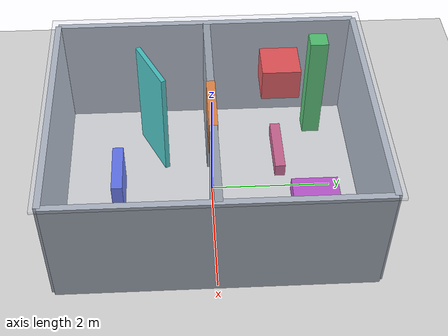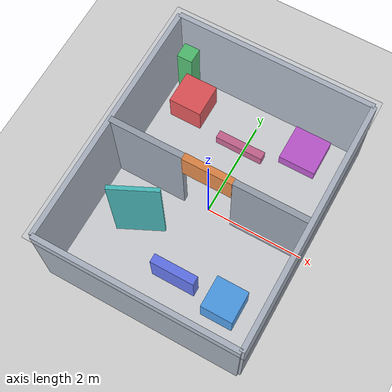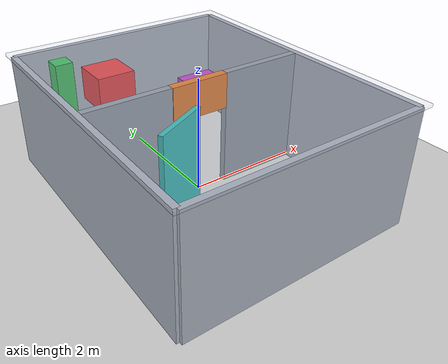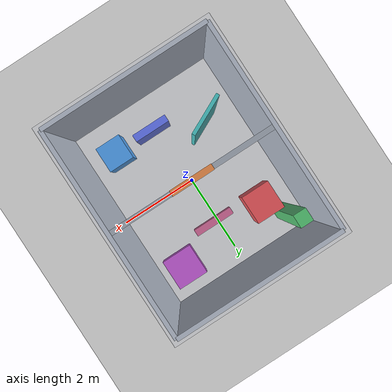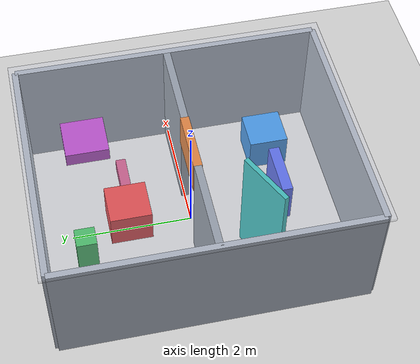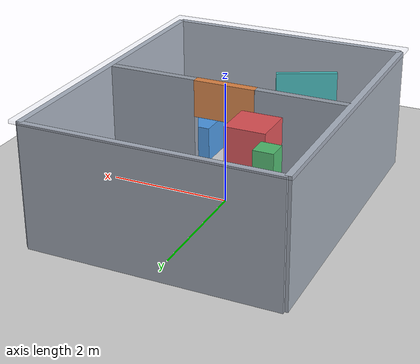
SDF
<sdf version="1.8">
 <world name="crazyflie_layered_obstacle_test">
  <plugin filename="gz-sim-physics-system" name="gz::sim::systems::Physics"/>
  <plugin filename="gz-sim-sensors-system" name="gz::sim::systems::Sensors">
   <render_engine>ogre2</render_engine>
  </plugin>
  <plugin filename="gz-sim-scene-broadcaster-system" name="gz::sim::systems::SceneBroadcaster"/>
  <plugin filename="gz-sim-user-commands-system" name="gz::sim::systems::UserCommands"/>
  <light name="sun" type="directional">
   <pose>0 0 10 0 0 0</pose>
   <diffuse>0.85 0.85 0.85 1</diffuse>
   <specular>0.2 0.2 0.2 1</specular>
   <attenuation>
    <range>1000</range>
    <constant>0.9</constant>
    <linear>0.01</linear>
    <quadratic>0.001</quadratic>
   </attenuation>
   <direction>-0.5 0.2 -0.9</direction>
  </light>
  <model name="ground_plane">
   <static>true</static>
   <link name="link">
    <collision name="collision">
     <geometry><plane><normal>0 0 1</normal><size>8 9</size></plane></geometry>
    </collision>
    <visual name="visual">
     <geometry><plane><normal>0 0 1</normal><size>8 9</size></plane></geometry>
     <material>
      <ambient>0.82 0.82 0.82 1</ambient>
      <diffuse>0.82 0.82 0.82 1</diffuse>
      <specular>0.08 0.08 0.08 1</specular>
     </material>
    </visual>
   </link>
  </model>
  <model name="ceiling_2m">
   <static>true</static>
   <pose>0 0 2.025 0 0 0</pose>
   <link name="link">
    <collision name="collision"><geometry><box><size>4.2 5.2 0.05</size></box></geometry></collision>
    <visual name="visual">
     <geometry><box><size>4.2 5.2 0.05</size></box></geometry>
     <material><ambient>0.78 0.82 0.9 0.18</ambient><diffuse>0.78 0.82 0.9 0.18</diffuse></material>
     <transparency>0.72</transparency>
     <cast_shadows>false</cast_shadows>
    </visual>
   </link>
  </model>
  <model name="wall_north">
   <static>true</static>
   <pose>0 2.5 1.0 0 0 0</pose>
   <link name="link">
    <collision name="collision"><geometry><box><size>4.0 0.10 2.0</size></box></geometry></collision>
    <visual name="visual">
     <geometry><box><size>4.0 0.10 2.0</size></box></geometry>
     <material><ambient>0.65 0.68 0.73 1</ambient><diffuse>0.65 0.68 0.73 1</diffuse></material>
    </visual>
   </link>
  </model>
  <model name="wall_south">
   <static>true</static>
   <pose>0 -2.5 1.0 0 0 0</pose>
   <link name="link">
    <collision name="collision"><geometry><box><size>4.0 0.10 2.0</size></box></geometry></collision>
    <visual name="visual">
     <geometry><box><size>4.0 0.10 2.0</size></box></geometry>
     <material><ambient>0.65 0.68 0.73 1</ambient><diffuse>0.65 0.68 0.73 1</diffuse></material>
    </visual>
   </link>
  </model>
  <model name="wall_west">
   <static>true</static>
   <pose>-2.0 0 1.0 0 0 0</pose>
   <link name="link">
    <collision name="collision"><geometry><box><size>0.10 5.0 2.0</size></box></geometry></collision>
    <visual name="visual">
     <geometry><box><size>0.10 5.0 2.0</size></box></geometry>
     <material><ambient>0.65 0.68 0.73 1</ambient><diffuse>0.65 0.68 0.73 1</diffuse></material>
    </visual>
   </link>
  </model>
  <model name="wall_east">
   <static>true</static>
   <pose>2.0 0 1.0 0 0 0</pose>
   <link name="link">
    <collision name="collision"><geometry><box><size>0.10 5.0 2.0</size></box></geometry></collision>
    <visual name="visual">
     <geometry><box><size>0.10 5.0 2.0</size></box></geometry>
     <material><ambient>0.65 0.68 0.73 1</ambient><diffuse>0.65 0.68 0.73 1</diffuse></material>
    </visual>
   </link>
  </model>
  <model name="door_partition_left">
   <static>true</static>
   <pose>-1.25 0 1.0 0 0 0</pose>
   <link name="link">
    <collision name="collision"><geometry><box><size>1.50 0.12 2.0</size></box></geometry></collision>
    <visual name="visual">
     <geometry><box><size>1.50 0.12 2.0</size></box></geometry>
     <material><ambient>0.55 0.58 0.62 1</ambient><diffuse>0.55 0.58 0.62 1</diffuse></material>
    </visual>
   </link>
  </model>
  <model name="door_partition_right">
   <static>true</static>
   <pose>1.25 0 1.0 0 0 0</pose>
   <link name="link">
    <collision name="collision"><geometry><box><size>1.50 0.12 2.0</size></box></geometry></collision>
    <visual name="visual">
     <geometry><box><size>1.50 0.12 2.0</size></box></geometry>
     <material><ambient>0.55 0.58 0.62 1</ambient><diffuse>0.55 0.58 0.62 1</diffuse></material>
    </visual>
   </link>
  </model>
  <model name="door_lintel_blocks_upper_layer">
   <static>true</static>
   <pose>0 0 1.70 0 0 0</pose>
   <link name="link">
    <collision name="collision"><geometry><box><size>1.00 0.14 0.60</size></box></geometry></collision>
    <visual name="visual">
     <geometry><box><size>1.00 0.14 0.60</size></box></geometry>
     <material><ambient>0.9 0.45 0.12 1</ambient><diffuse>0.9 0.45 0.12 1</diffuse></material>
    </visual>
   </link>
  </model>
  <model name="floor_obstacle_blocks_low_layer_only">
   <static>true</static>
   <pose>1.20 -1.55 0.30 0 0 0</pose>
   <link name="link">
    <collision name="collision"><geometry><box><size>0.65 0.65 0.60</size></box></geometry></collision>
    <visual name="visual">
     <geometry><box><size>0.65 0.65 0.60</size></box></geometry>
     <material><ambient>0.18 0.55 0.9 1</ambient><diffuse>0.18 0.55 0.9 1</diffuse></material>
    </visual>
   </link>
  </model>
  <model name="suspended_obstacle_blocks_middle_layer_only">
   <static>true</static>
   <pose>1.20 1.55 1.00 0 0 0</pose>
   <link name="link">
    <collision name="collision"><geometry><box><size>0.72 0.72 0.24</size></box></geometry></collision>
    <visual name="visual">
     <geometry><box><size>0.72 0.72 0.24</size></box></geometry>
     <material><ambient>0.72 0.22 0.78 1</ambient><diffuse>0.72 0.22 0.78 1</diffuse></material>
    </visual>
   </link>
  </model>
  <model name="hanging_obstacle_blocks_upper_layer_only">
   <static>true</static>
   <pose>-0.95 1.15 1.725 0 0 0</pose>
   <link name="link">
    <collision name="collision"><geometry><box><size>0.62 0.62 0.55</size></box></geometry></collision>
    <visual name="visual">
     <geometry><box><size>0.62 0.62 0.55</size></box></geometry>
     <material><ambient>0.9 0.2 0.2 1</ambient><diffuse>0.9 0.2 0.2 1</diffuse></material>
    </visual>
   </link>
  </model>
  <model name="local_low_ceiling_patch">
   <static>true</static>
   <pose>1.35 0.62 1.775 0 0 0</pose>
   <link name="link">
    <collision name="collision"><geometry><box><size>0.90 0.80 0.45</size></box></geometry></collision>
    <visual name="visual">
     <geometry><box><size>0.90 0.80 0.45</size></box></geometry>
     <material><ambient>0.92 0.72 0.15 0.8</ambient><diffuse>0.92 0.72 0.15 0.8</diffuse></material>
     <transparency>0.15</transparency>
    </visual>
   </link>
  </model>
  <model name="full_height_column">
   <static>true</static>
   <pose>-1.45 1.85 1.0 0 0 0</pose>
   <link name="link">
    <collision name="collision"><geometry><box><size>0.30 0.30 2.0</size></box></geometry></collision>
    <visual name="visual">
     <geometry><box><size>0.30 0.30 2.0</size></box></geometry>
     <material><ambient>0.2 0.72 0.32 1</ambient><diffuse>0.2 0.72 0.32 1</diffuse></material>
    </visual>
   </link>
  </model>
  <model name="thin_full_height_wall">
   <static>true</static>
   <pose>-0.95 -0.95 1.0 0 0 0.45</pose>
   <link name="link">
    <collision name="collision"><geometry><box><size>0.95 0.08 2.0</size></box></geometry></collision>
    <visual name="visual">
     <geometry><box><size>0.95 0.08 2.0</size></box></geometry>
     <material><ambient>0.15 0.72 0.70 1</ambient><diffuse>0.15 0.72 0.70 1</diffuse></material>
    </visual>
   </link>
  </model>
  <model name="low_beam_requires_overflight">
   <static>true</static>
   <pose>0.15 -1.55 0.38 0 0 0</pose>
   <link name="link">
    <collision name="collision"><geometry><box><size>0.90 0.18 0.76</size></box></geometry></collision>
    <visual name="visual">
     <geometry><box><size>0.90 0.18 0.76</size></box></geometry>
     <material><ambient>0.28 0.36 0.92 1</ambient><diffuse>0.28 0.36 0.92 1</diffuse></material>
    </visual>
   </link>
  </model>
  <model name="floating_beam_requires_under_or_over_pass">
   <static>true</static>
   <pose>0.10 1.05 1.02 0 0 0</pose>
   <link name="link">
    <collision name="collision"><geometry><box><size>0.95 0.16 0.22</size></box></geometry></collision>
    <visual name="visual">
     <geometry><box><size>0.95 0.16 0.22</size></box></geometry>
     <material><ambient>0.78 0.28 0.48 1</ambient><diffuse>0.78 0.28 0.48 1</diffuse></material>
    </visual>
   </link>
  </model>
 </world>
</sdf>
